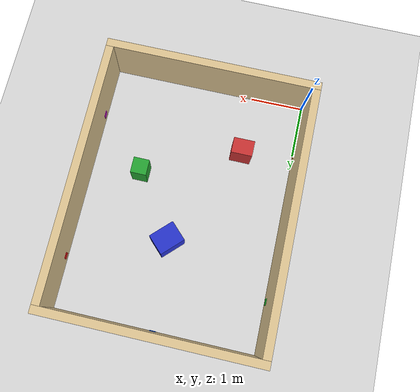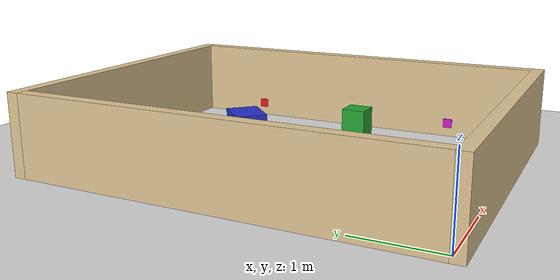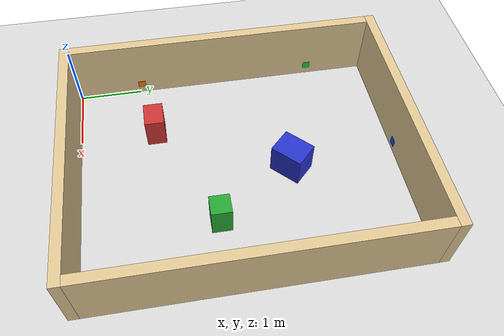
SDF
<sdf version='1.9'>

  <world name='real_arena'>

    <!-- ── Physics ─────────────────────────────────────────────────────── -->
    <physics name='1ms' type='ode'>
      <max_step_size>0.001</max_step_size>
      <real_time_factor>1</real_time_factor>
      <real_time_update_rate>1000</real_time_update_rate>
    </physics>

    <!-- ── Plugins requeridos por Fortress ─────────────────────────────── -->
    <plugin name='ignition::gazebo::systems::Physics'
            filename='libignition-gazebo-physics-system.so'/>
    <plugin name='ignition::gazebo::systems::UserCommands'
            filename='libignition-gazebo-user-commands-system.so'/>
    <plugin name='ignition::gazebo::systems::SceneBroadcaster'
            filename='libignition-gazebo-scene-broadcaster-system.so'/>
    <plugin name='ignition::gazebo::systems::Sensors'
            filename='libignition-gazebo-sensors-system.so'>
      <render_engine>ogre2</render_engine>
    </plugin>
    <plugin name='ignition::gazebo::systems::Contact'
            filename='libignition-gazebo-contact-system.so'/>

    <gravity>0 0 -9.8</gravity>
    <atmosphere type='adiabatic'/>

    <scene>
      <ambient>0.5 0.5 0.5 1</ambient>
      <background>0.8 0.85 0.9 1</background>
      <shadows>true</shadows>
    </scene>

    <!-- ── Suelo ────────────────────────────────────────────────────────── -->
    <model name='ground_plane'>
      <static>true</static>
      <link name='link'>
        <collision name='collision'>
          <geometry>
            <plane><normal>0 0 1</normal><size>20 20</size></plane>
          </geometry>
          <surface>
            <friction><ode><mu>1</mu><mu2>1</mu2></ode></friction>
            <bounce/><contact/>
          </surface>
        </collision>
        <visual name='visual'>
          <geometry>
            <plane><normal>0 0 1</normal><size>20 20</size></plane>
          </geometry>
          <material>
            <ambient>0.85 0.85 0.85 1</ambient>
            <diffuse>0.85 0.85 0.85 1</diffuse>
          </material>
        </visual>
        <pose>0 0 0 0 0 0</pose>
        <inertial><pose>0 0 0 0 0 0</pose><mass>1</mass>
          <inertia><ixx>1</ixx><ixy>0</ixy><ixz>0</ixz>
                   <iyy>1</iyy><iyz>0</iyz><izz>1</izz></inertia>
        </inertial>
      </link>
      <self_collide>false</self_collide>
    </model>

    <!-- Pared Sur (Y=0) — longitud en X incluyendo esquinas -->
    <model name='wall_south'>
      <static>true</static>
      <!-- pose: x=centro_X, y=cara_exterior, z=mitad_altura | roll pitch yaw -->
      <pose>1.88 -0.075 0.5 0 0 0</pose>
      <link name='link'>
        <collision name='col'>
          <geometry><box><size>4.06 0.15 1.0</size></box></geometry>
          <surface><friction><ode><mu>1</mu><mu2>1</mu2></ode></friction><bounce/><contact/></surface>
        </collision>
        <visual name='vis'>
          <geometry><box><size>4.06 0.15 1.0</size></box></geometry>
          <material>
            <ambient>0.88 0.78 0.58 1</ambient>
            <diffuse>0.88 0.78 0.58 1</diffuse>
          </material>
        </visual>
        <pose>0 0 0 0 0 0</pose>
        <inertial><pose>0 0 0 0 0 0</pose><mass>1</mass>
          <inertia><ixx>1</ixx><ixy>0</ixy><ixz>0</ixz>
                   <iyy>1</iyy><iyz>0</iyz><izz>1</izz></inertia>
        </inertial>
      </link>
      <self_collide>false</self_collide>
    </model>

    <!-- Pared Norte (Y=4.86) — longitud en X incluyendo esquinas -->
    <model name='wall_north'>
      <static>true</static>
      <pose>1.88 4.935 0.5 0 0 0</pose>
      <link name='link'>
        <collision name='col'>
          <geometry><box><size>4.06 0.15 1.0</size></box></geometry>
          <surface><friction><ode><mu>1</mu><mu2>1</mu2></ode></friction><bounce/><contact/></surface>
        </collision>
        <visual name='vis'>
          <geometry><box><size>4.06 0.15 1.0</size></box></geometry>
          <material>
            <ambient>0.88 0.78 0.58 1</ambient>
            <diffuse>0.88 0.78 0.58 1</diffuse>
          </material>
        </visual>
        <pose>0 0 0 0 0 0</pose>
        <inertial><pose>0 0 0 0 0 0</pose><mass>1</mass>
          <inertia><ixx>1</ixx><ixy>0</ixy><ixz>0</ixz>
                   <iyy>1</iyy><iyz>0</iyz><izz>1</izz></inertia>
        </inertial>
      </link>
      <self_collide>false</self_collide>
    </model>

    <!-- Pared Oeste (X=0) — longitud en Y (solo entre paredes N/S) -->
    <model name='wall_west'>
      <static>true</static>
      <pose>-0.075 2.43 0.5 0 0 0</pose>
      <link name='link'>
        <collision name='col'>
          <geometry><box><size>0.15 4.86 1.0</size></box></geometry>
          <surface><friction><ode><mu>1</mu><mu2>1</mu2></ode></friction><bounce/><contact/></surface>
        </collision>
        <visual name='vis'>
          <geometry><box><size>0.15 4.86 1.0</size></box></geometry>
          <material>
            <ambient>0.88 0.78 0.58 1</ambient>
            <diffuse>0.88 0.78 0.58 1</diffuse>
          </material>
        </visual>
        <pose>0 0 0 0 0 0</pose>
        <inertial><pose>0 0 0 0 0 0</pose><mass>1</mass>
          <inertia><ixx>1</ixx><ixy>0</ixy><ixz>0</ixz>
                   <iyy>1</iyy><iyz>0</iyz><izz>1</izz></inertia>
        </inertial>
      </link>
      <self_collide>false</self_collide>
    </model>

    <!-- Pared Este (X=3.76) — longitud en Y (solo entre paredes N/S) -->
    <model name='wall_east'>
      <static>true</static>
      <pose>3.835 2.43 0.5 0 0 0</pose>
      <link name='link'>
        <collision name='col'>
          <geometry><box><size>0.15 4.86 1.0</size></box></geometry>
          <surface><friction><ode><mu>1</mu><mu2>1</mu2></ode></friction><bounce/><contact/></surface>
        </collision>
        <visual name='vis'>
          <geometry><box><size>0.15 4.86 1.0</size></box></geometry>
          <material>
            <ambient>0.88 0.78 0.58 1</ambient>
            <diffuse>0.88 0.78 0.58 1</diffuse>
          </material>
        </visual>
        <pose>0 0 0 0 0 0</pose>
        <inertial><pose>0 0 0 0 0 0</pose><mass>1</mass>
          <inertia><ixx>1</ixx><ixy>0</ixy><ixz>0</ixz>
                   <iyy>1</iyy><iyz>0</iyz><izz>1</izz></inertia>
        </inertial>
      </link>
      <self_collide>false</self_collide>
    </model>

    <!-- ID=1 — Pared Norte, centro (x=1.88, y=4.86), mirando al sur (yaw=0)
                La cara visible del marcador apunta hacia -Y (interior de la pista) -->
    <model name='aruco_id1_north'>
      <static>true</static>
      <!-- z=0.15 m del suelo (z en aruco_map.yaml) -->
      <!-- pose: en cara interior de pared norte; offset -0.02 en Y para quedar visible -->
      <pose>1.88 4.86 0.15 0 0 0</pose>
      <link name='link'>
        <collision name='col'>
          <geometry><box><size>0.12 0.02 0.12</size></box></geometry>
        </collision>
        <visual name='vis'>
          <geometry><box><size>0.12 0.02 0.12</size></box></geometry>
          <material>
            <!-- Azul brillante — ID 1 -->
            <ambient>0.0 0.3 0.9 1</ambient>
            <diffuse>0.0 0.3 0.9 1</diffuse>
          </material>
        </visual>
        <pose>0 0 0 0 0 0</pose>
        <inertial><pose>0 0 0 0 0 0</pose><mass>0.1</mass>
          <inertia><ixx>1</ixx><ixy>0</ixy><ixz>0</ixz>
                   <iyy>1</iyy><iyz>0</iyz><izz>1</izz></inertia>
        </inertial>
      </link>
      <self_collide>false</self_collide>
    </model>

    <!-- ID=0 — Pared Oeste, parte alta (x=0, y=3.90), mirando al este (yaw=π/2)
                La cara visible apunta hacia +X (interior de la pista) -->
    <model name='aruco_id0_west_high'>
      <static>true</static>
      <pose>0.0 3.90 0.18 0 0 0</pose>
      <link name='link'>
        <collision name='col'>
          <geometry><box><size>0.02 0.12 0.12</size></box></geometry>
        </collision>
        <visual name='vis'>
          <geometry><box><size>0.02 0.12 0.12</size></box></geometry>
          <material>
            <!-- Verde — ID 0 -->
            <ambient>0.1 0.8 0.2 1</ambient>
            <diffuse>0.1 0.8 0.2 1</diffuse>
          </material>
        </visual>
        <pose>0 0 0 0 0 0</pose>
        <inertial><pose>0 0 0 0 0 0</pose><mass>0.1</mass>
          <inertia><ixx>1</ixx><ixy>0</ixy><ixz>0</ixz>
                   <iyy>1</iyy><iyz>0</iyz><izz>1</izz></inertia>
        </inertial>
      </link>
      <self_collide>false</self_collide>
    </model>

    <!-- ID=4 — Pared Oeste, parte baja (x=0, y=1.04), mirando al este (yaw=π/2) -->
    <model name='aruco_id4_west_low'>
      <static>true</static>
      <pose>0.0 1.04 0.18 0 0 0</pose>
      <link name='link'>
        <collision name='col'>
          <geometry><box><size>0.02 0.12 0.12</size></box></geometry>
        </collision>
        <visual name='vis'>
          <geometry><box><size>0.02 0.12 0.12</size></box></geometry>
          <material>
            <!-- Naranja — ID 4 -->
            <ambient>0.9 0.5 0.0 1</ambient>
            <diffuse>0.9 0.5 0.0 1</diffuse>
          </material>
        </visual>
        <pose>0 0 0 0 0 0</pose>
        <inertial><pose>0 0 0 0 0 0</pose><mass>0.1</mass>
          <inertia><ixx>1</ixx><ixy>0</ixy><ixz>0</ixz>
                   <iyy>1</iyy><iyz>0</iyz><izz>1</izz></inertia>
        </inertial>
      </link>
      <self_collide>false</self_collide>
    </model>

    <!-- ID=2 — Pared Este, parte alta (x=3.76, y=3.90), mirando al oeste (yaw=-π/2) -->
    <model name='aruco_id2_east_high'>
      <static>true</static>
      <pose>3.76 3.90 0.18 0 0 0</pose>
      <link name='link'>
        <collision name='col'>
          <geometry><box><size>0.02 0.12 0.12</size></box></geometry>
        </collision>
        <visual name='vis'>
          <geometry><box><size>0.02 0.12 0.12</size></box></geometry>
          <material>
            <!-- Rojo — ID 2 -->
            <ambient>0.9 0.1 0.1 1</ambient>
            <diffuse>0.9 0.1 0.1 1</diffuse>
          </material>
        </visual>
        <pose>0 0 0 0 0 0</pose>
        <inertial><pose>0 0 0 0 0 0</pose><mass>0.1</mass>
          <inertia><ixx>1</ixx><ixy>0</ixy><ixz>0</ixz>
                   <iyy>1</iyy><iyz>0</iyz><izz>1</izz></inertia>
        </inertial>
      </link>
      <self_collide>false</self_collide>
    </model>

    <!-- ID=3 — Pared Este, parte baja (x=3.76, y=1.04), mirando al oeste (yaw=-π/2) -->
    <model name='aruco_id3_east_low'>
      <static>true</static>
      <pose>3.76 1.04 0.18 0 0 0</pose>
      <link name='link'>
        <collision name='col'>
          <geometry><box><size>0.02 0.12 0.12</size></box></geometry>
        </collision>
        <visual name='vis'>
          <geometry><box><size>0.02 0.12 0.12</size></box></geometry>
          <material>
            <!-- Magenta — ID 3 -->
            <ambient>0.8 0.1 0.8 1</ambient>
            <diffuse>0.8 0.1 0.8 1</diffuse>
          </material>
        </visual>
        <pose>0 0 0 0 0 0</pose>
        <inertial><pose>0 0 0 0 0 0</pose><mass>0.1</mass>
          <inertia><ixx>1</ixx><ixy>0</ixy><ixz>0</ixz>
                   <iyy>1</iyy><iyz>0</iyz><izz>1</izz></inertia>
        </inertial>
      </link>
      <self_collide>false</self_collide>
    </model>

    <model name='obstacle_1'>
      <static>true</static>
      <!-- ▼ EDITAR AQUÍ: x y z(=height/2) roll pitch yaw
           Sincronizar con obstacles.yaml — x, y, yaw deben coincidir
           z = height/2 para que el obstáculo apoye en el suelo -->
      <pose>1.00 1.20 0.25 0 0 0.00</pose>
      <!-- ▲ FIN EDICIÓN POSE -->
      <link name='link'>
        <collision name='col'>
          <!-- ▼ EDITAR AQUÍ: length(X) width(Y) height(Z)
               Sincronizar con obstacles.yaml -->
          <geometry><box><size>0.40 0.30 0.50</size></box></geometry>
          <!-- ▲ FIN EDICIÓN SIZE -->
          <surface><friction><ode><mu>1</mu><mu2>1</mu2></ode></friction><bounce/><contact/></surface>
        </collision>
        <visual name='vis'>
          <!-- ▼ Mantener idéntico al collision size -->
          <geometry><box><size>0.40 0.30 0.50</size></box></geometry>
          <!-- ▲ FIN EDICIÓN SIZE -->
          <material>
            <!-- Rojo oscuro — obstáculo 1 -->
            <ambient>0.70 0.15 0.15 1</ambient>
            <diffuse>0.80 0.20 0.20 1</diffuse>
          </material>
        </visual>
        <pose>0 0 0 0 0 0</pose>
        <inertial><pose>0 0 0 0 0 0</pose><mass>5</mass>
          <inertia><ixx>1</ixx><ixy>0</ixy><ixz>0</ixz>
                   <iyy>1</iyy><iyz>0</iyz><izz>1</izz></inertia>
        </inertial>
      </link>
      <self_collide>false</self_collide>
    </model>

    <model name='obstacle_2'>
      <static>true</static>
      <!-- ▼ EDITAR AQUÍ: x y z(=height/2) roll pitch yaw -->
      <pose>2.00 3.20 0.25 0 0 0.785</pose>
      <!-- ▲ FIN EDICIÓN POSE (yaw=0.785 rad = 45°) -->
      <link name='link'>
        <collision name='col'>
          <!-- ▼ EDITAR AQUÍ: length(X) width(Y) height(Z) -->
          <geometry><box><size>0.50 0.40 0.50</size></box></geometry>
          <!-- ▲ FIN EDICIÓN SIZE -->
          <surface><friction><ode><mu>1</mu><mu2>1</mu2></ode></friction><bounce/><contact/></surface>
        </collision>
        <visual name='vis'>
          <!-- ▼ Mantener idéntico al collision size -->
          <geometry><box><size>0.50 0.40 0.50</size></box></geometry>
          <!-- ▲ FIN EDICIÓN SIZE -->
          <material>
            <!-- Azul oscuro — obstáculo 2 -->
            <ambient>0.10 0.15 0.70 1</ambient>
            <diffuse>0.15 0.20 0.80 1</diffuse>
          </material>
        </visual>
        <pose>0 0 0 0 0 0</pose>
        <inertial><pose>0 0 0 0 0 0</pose><mass>5</mass>
          <inertia><ixx>1</ixx><ixy>0</ixy><ixz>0</ixz>
                   <iyy>1</iyy><iyz>0</iyz><izz>1</izz></inertia>
        </inertial>
      </link>
      <self_collide>false</self_collide>
    </model>

    <model name='obstacle_3'>
      <static>true</static>
      <!-- ▼ EDITAR AQUÍ: x y z(=height/2) roll pitch yaw -->
      <pose>2.80 2.00 0.25 0 0 0.00</pose>
      <!-- ▲ FIN EDICIÓN POSE -->
      <link name='link'>
        <collision name='col'>
          <!-- ▼ EDITAR AQUÍ: length(X) width(Y) height(Z) -->
          <geometry><box><size>0.30 0.30 0.50</size></box></geometry>
          <!-- ▲ FIN EDICIÓN SIZE -->
          <surface><friction><ode><mu>1</mu><mu2>1</mu2></ode></friction><bounce/><contact/></surface>
        </collision>
        <visual name='vis'>
          <!-- ▼ Mantener idéntico al collision size -->
          <geometry><box><size>0.30 0.30 0.50</size></box></geometry>
          <!-- ▲ FIN EDICIÓN SIZE -->
          <material>
            <!-- Verde oscuro — obstáculo 3 -->
            <ambient>0.10 0.55 0.15 1</ambient>
            <diffuse>0.15 0.65 0.20 1</diffuse>
          </material>
        </visual>
        <pose>0 0 0 0 0 0</pose>
        <inertial><pose>0 0 0 0 0 0</pose><mass>5</mass>
          <inertia><ixx>1</ixx><ixy>0</ixy><ixz>0</ixz>
                   <iyy>1</iyy><iyz>0</iyz><izz>1</izz></inertia>
        </inertial>
      </link>
      <self_collide>false</self_collide>
    </model>

  </world>
</sdf>
